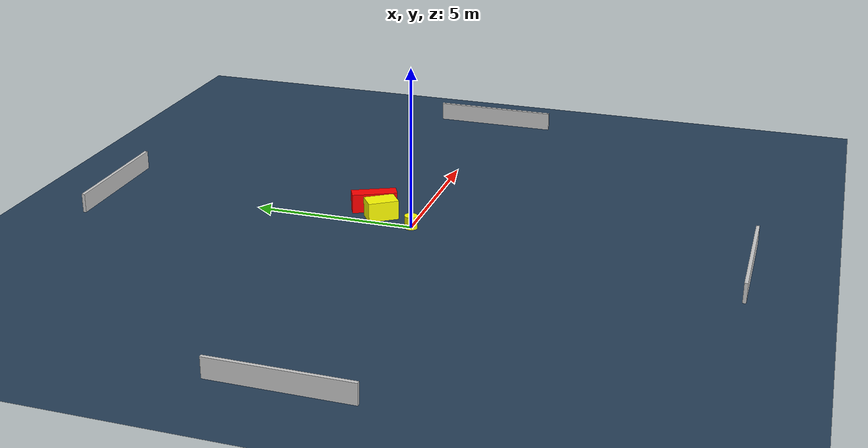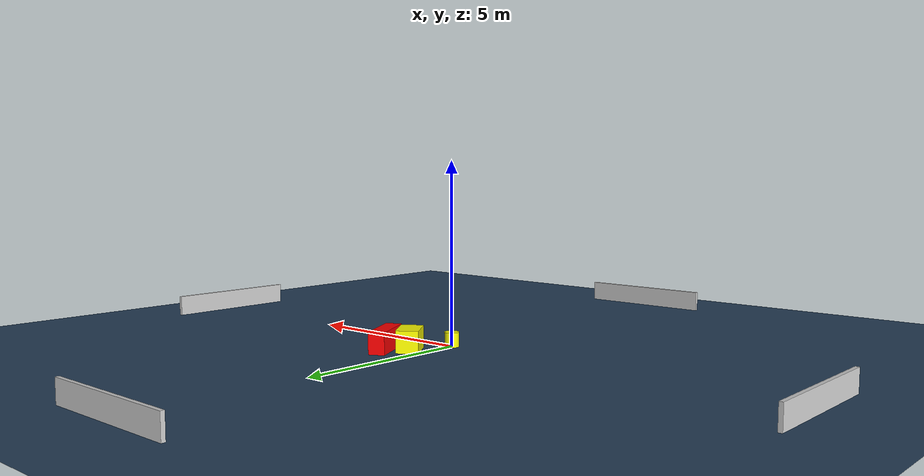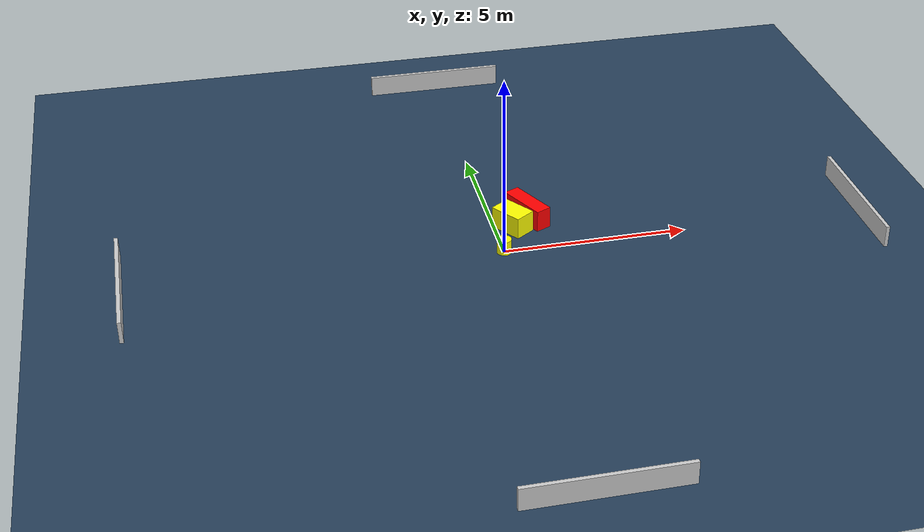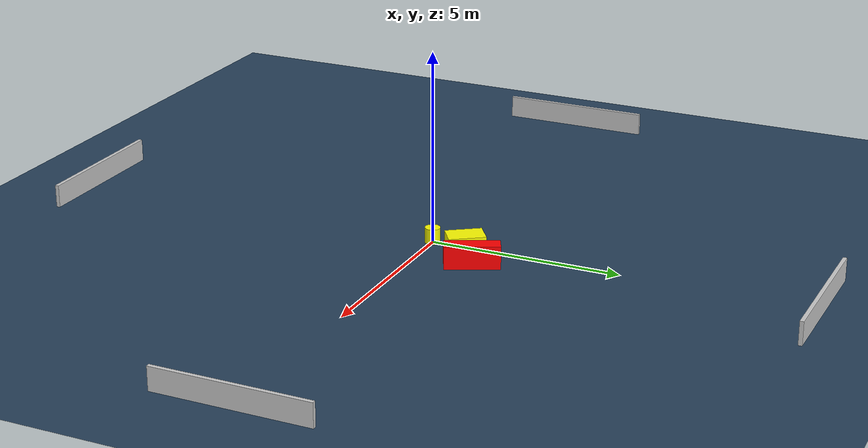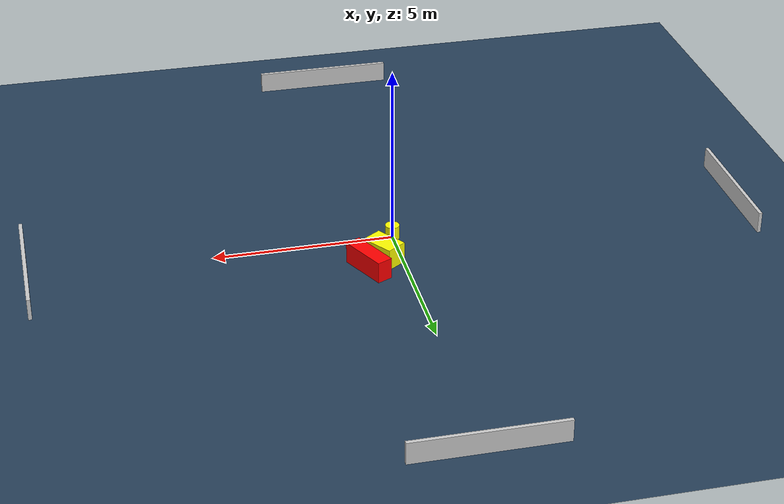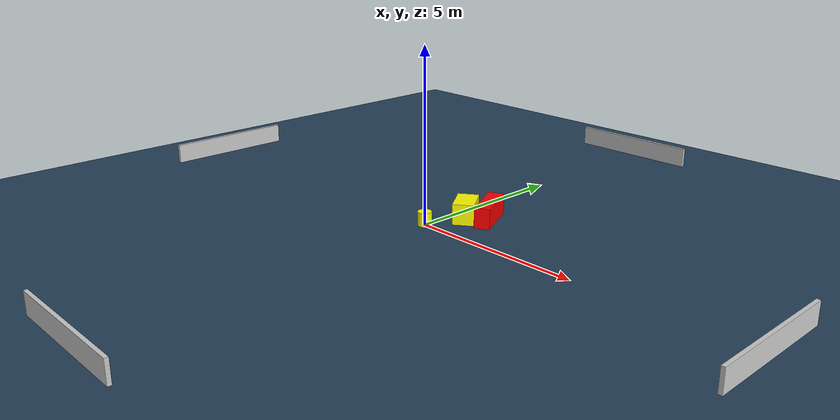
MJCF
<?xml version="1.0" ?>
<mujoco model="generated_environment">
  <option timestep="0.01" integrator="RK4" cone="elliptic"/>
  <default>
    <geom density="1"/>
  </default>
  <asset>
    <texture builtin="gradient" height="3072" name="skybox" rgb1="0.3 0.5 0.7" rgb2="0 0 0" type="skybox" width="512"/>
    <texture builtin="checker" height="300" name="groundplane" rgb1="0.2 0.3 0.4" rgb2="0.1 0.2 0.3" type="2d" width="300"/>
    <material name="groundplane" reflectance="0.2" texrepeat="5 5" texture="groundplane"/>
  </asset>
  <worldbody>
    <light dir="0 0 -1" directional="true" pos="0 0 1.5"/>
    <geom condim="3" friction="0.5 0.005 0.001" material="groundplane" name="floor" pos="0 0 0" size="0 0 0.05" type="plane"/>
    <body name="walls">
      <geom name="wall_1" condim="4" pos="-10.0 0.0 0.3" rgba="0.800000011920929 0.800000011920929 0.800000011920929 1.0" size="0.05 2.0 0.3" type="box"/>
      <geom name="wall_2" condim="4" pos="10.0 0.0 0.3" rgba="0.800000011920929 0.800000011920929 0.800000011920929 1.0" size="0.05 2.0 0.3" type="box"/>
      <geom name="wall_3" condim="4" pos="0.0 -10.0 0.3" rgba="0.800000011920929 0.800000011920929 0.800000011920929 1.0" size="2.0 0.05 0.3" type="box"/>
      <geom name="wall_4" condim="4" pos="0.0 10.0 0.3" rgba="0.800000011920929 0.800000011920929 0.800000011920929 1.0" size="2.0 0.05 0.3" type="box"/>
    </body>
    <body name="robot">
      <joint name="joint_x" type="slide" pos="0 0 0" axis="1 0 0"/>
      <joint name="joint_y" type="slide" pos="0 0 0" axis="0 1 0"/>
      <geom name="robot" type="cylinder" pos="0.0 0.0 0.2" size="0.2 0.2 0.0" mass="5.0" friction="1.0 0.005 0.0001" condim="4" rgba="1.0 1.0 0.0 1.0"/>
    </body>
    <body name="obstacle_1_movable">
      <geom name="obstacle_1_movable" condim="4" pos="0.4890147379436091 1.1216510368369363 0.3" euler="0 0 304.7867658959507" friction="0.0 0.005 0.001" rgba="1.0 1.0 0.0 1.0" size="0.4745083130325878 0.30405320000190006 0.3" type="box" mass="0.1"/>
      <joint type="free"/>
    </body>
    <body name="obstacle_2_static">
      <geom name="obstacle_2_static" condim="4" pos="0.9987209761409435 1.5292026194548314 0.3" euler="0 0 25.843696730766478" friction="0.0 0.005 0.001" rgba="1.0 0.0 0.0 1.0" size="0.22168103591484872 0.7001502214010642 0.3" type="box"/>
    </body>
  </worldbody>
  <actuator>
    <motor name="actuator_x" joint="joint_x" gear="1" ctrlrange="-1 1"/>
    <motor name="actuator_y" joint="joint_y" gear="1" ctrlrange="-1 1"/>
  </actuator>
</mujoco>
